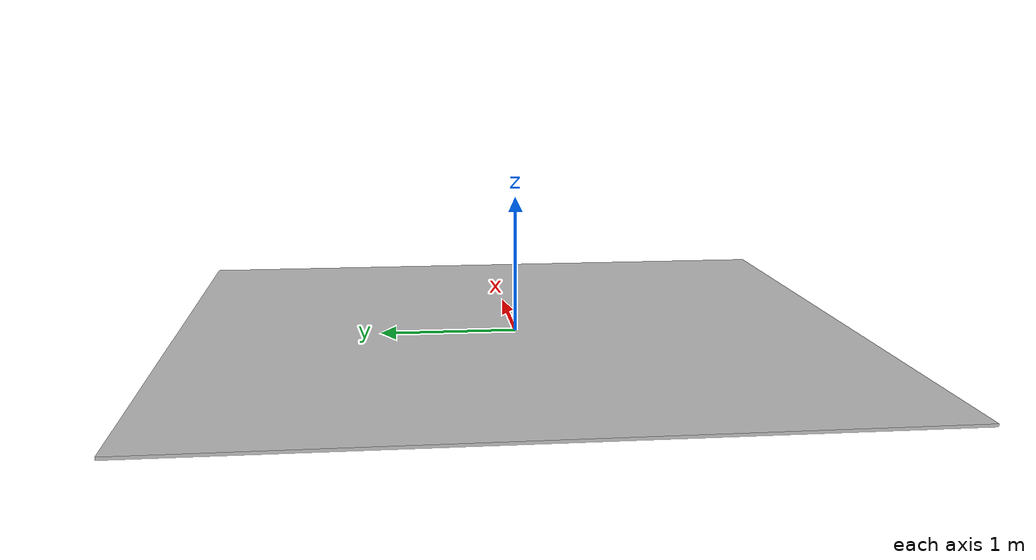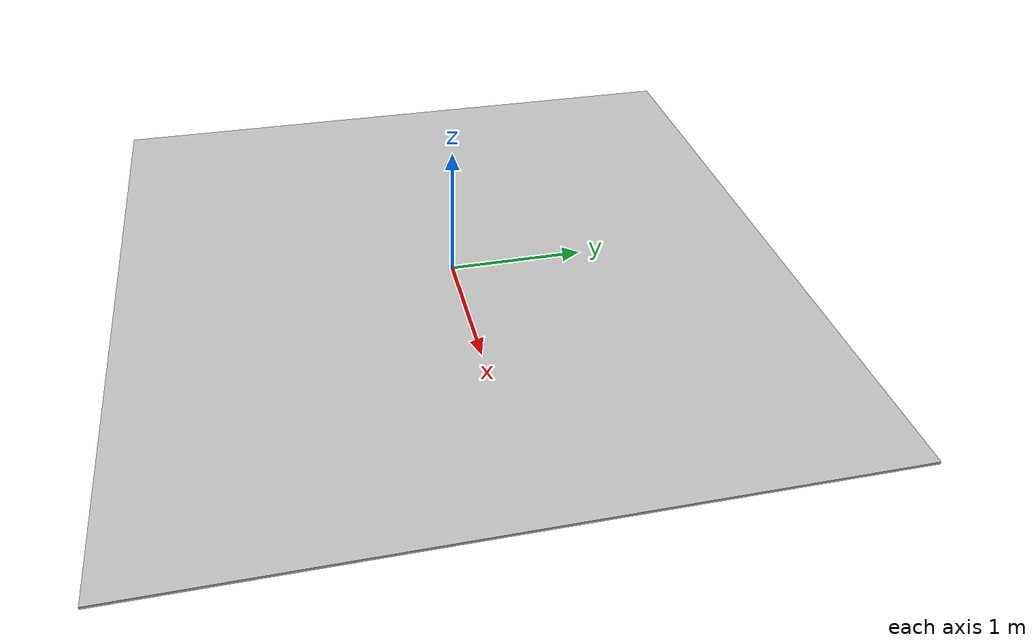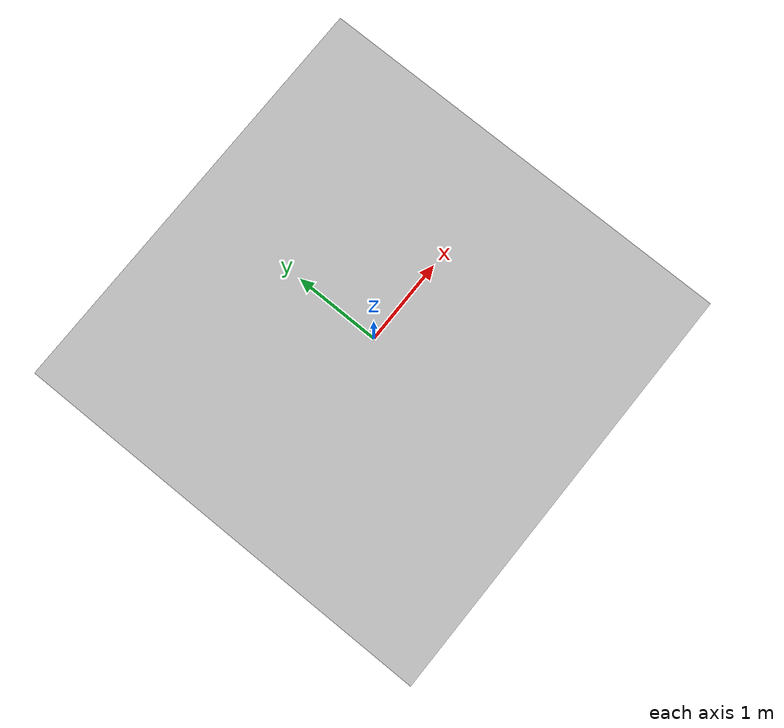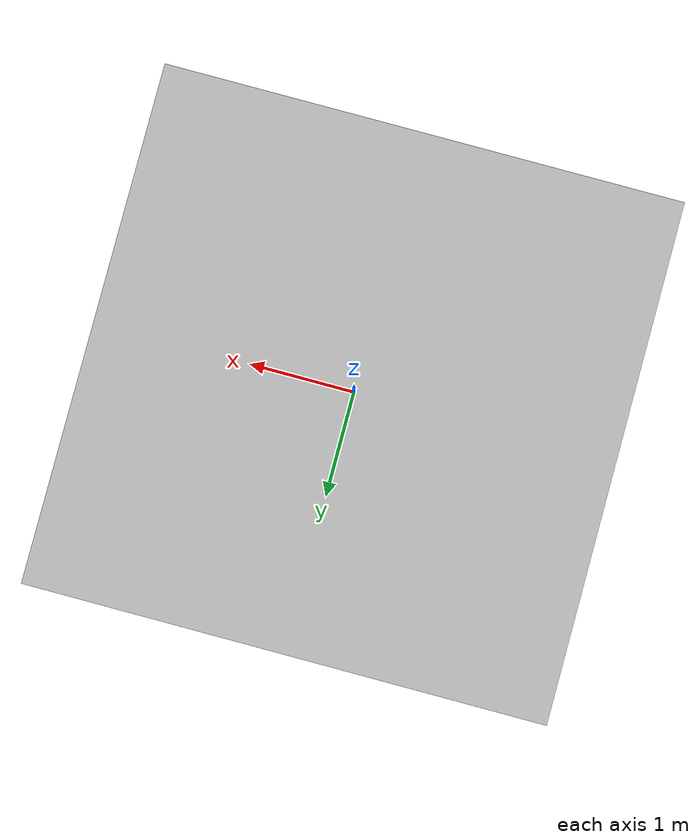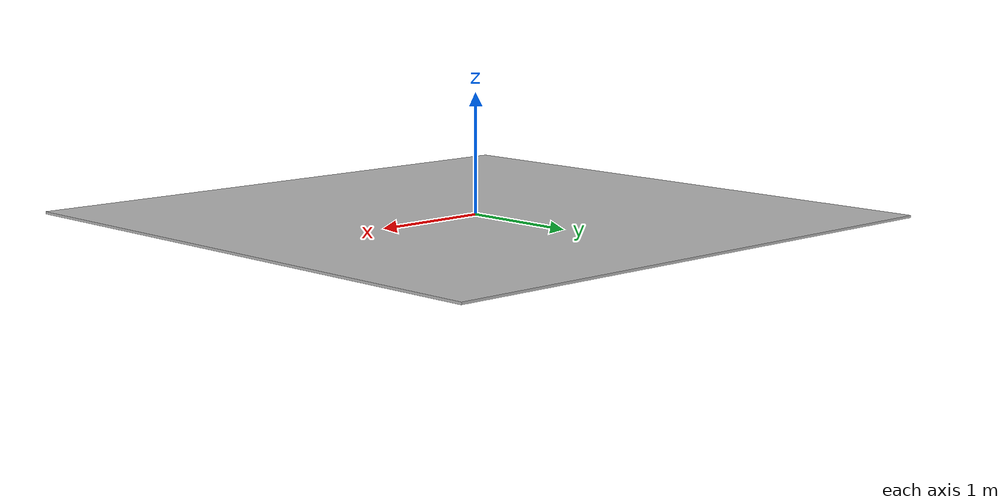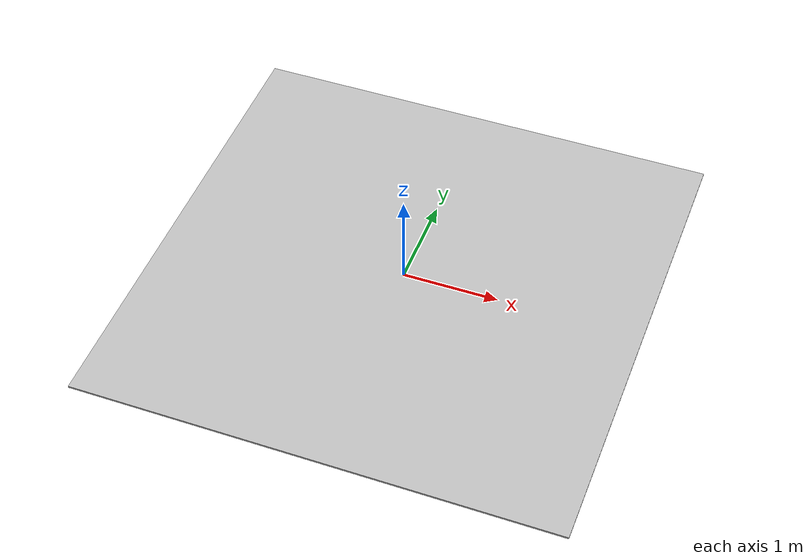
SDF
<?xml version="1.0" ?>
<sdf version="1.5">
  <model name="robocop_maze">
    <static>1</static>
    <link name="link">
      <pose>0 0 0 0.0 0.0 0.0</pose>
      <visual name="visual">
        <cast_shadows>false</cast_shadows>
        <geometry>
          <mesh>
            <uri>model://robocop_maze/meshes/robocop_maze.dae</uri>
          </mesh>
        </geometry>
      </visual>
    </link>
  </model>
</sdf>
